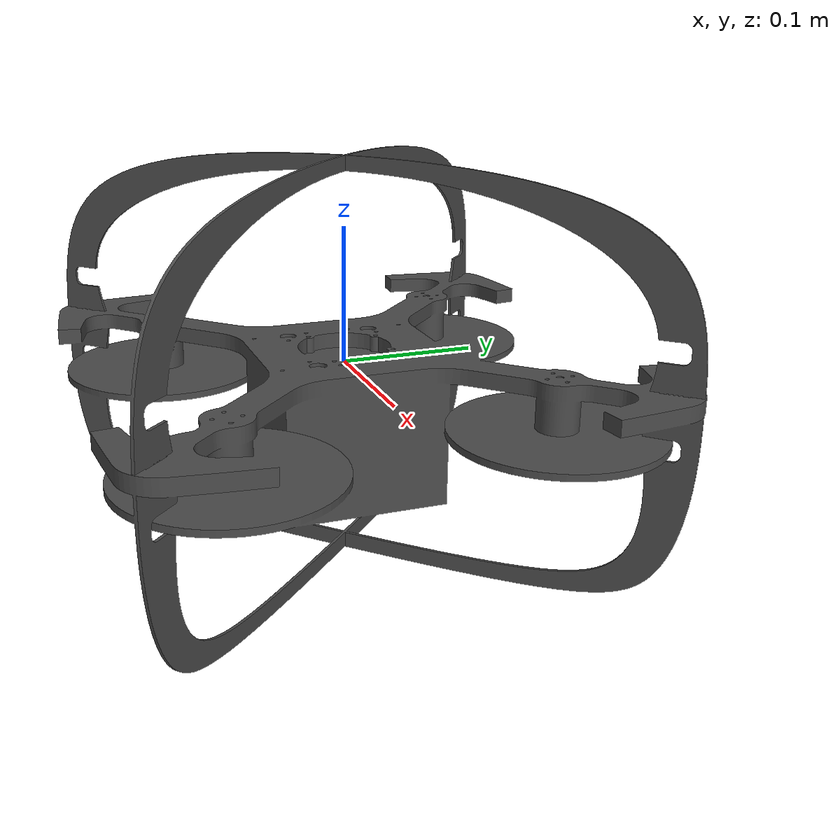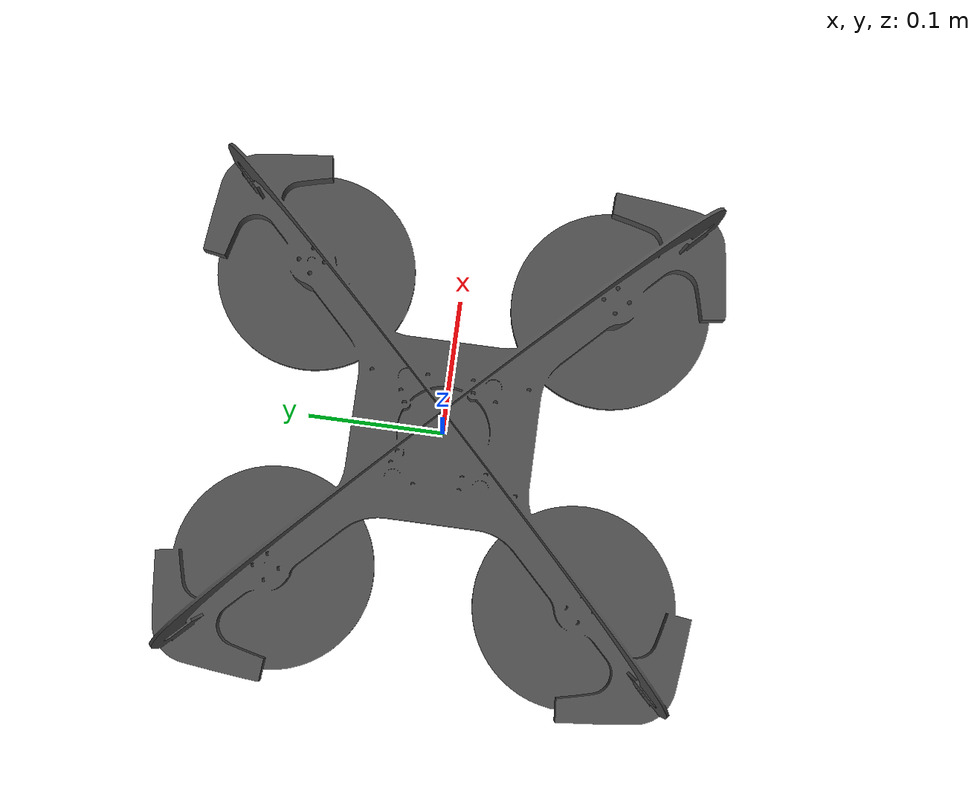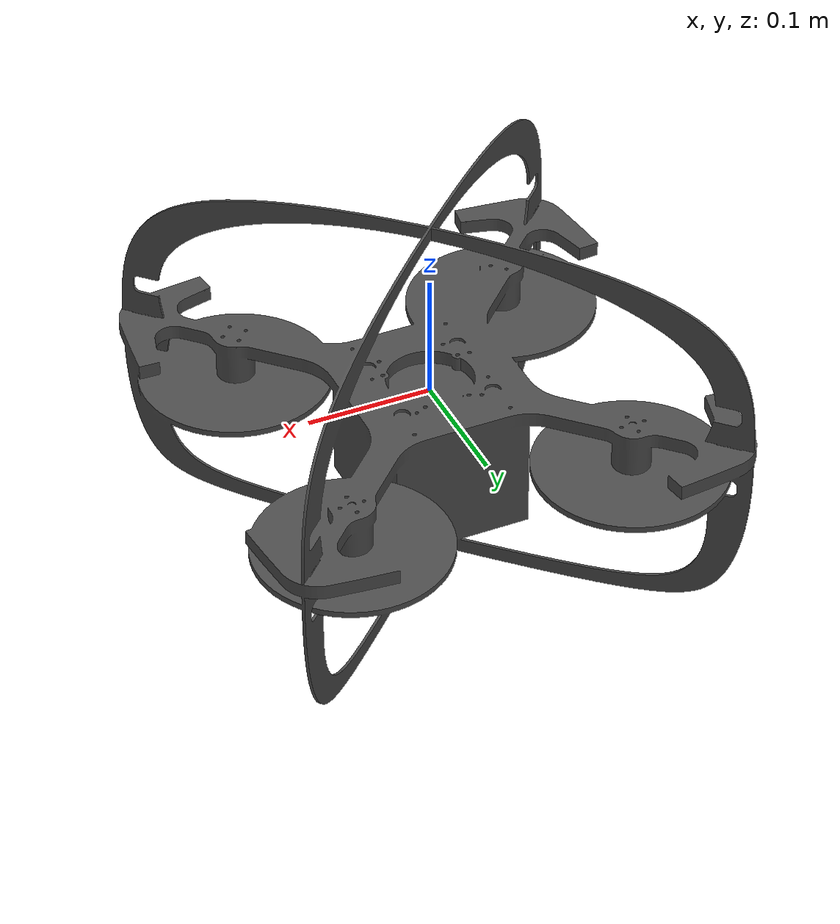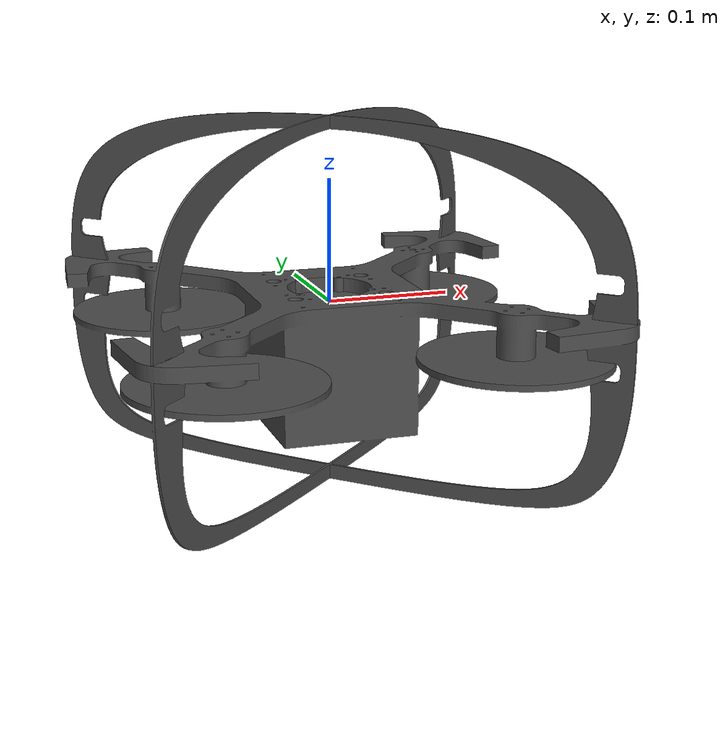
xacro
<?xml version="1.0"?>

<robot
  name="quadrotor"
  xmlns:xacro="http://www.ros.org/wiki/xacro"
>

    <!-- Included URDF Files -->
    <xacro:include filename="$(find m100_simulation)/simulation/urdf/explorer_quadrotor_base.urdf.xacro" />

    <!-- Instantiate quadrotor_base_macro once (has no parameters atm) -->
    <xacro:quadrotor_base_macro />

</robot>

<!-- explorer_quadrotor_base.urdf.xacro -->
<robot xmlns:xacro="http://www.ros.org/wiki/xacro">

  <xacro:property name="pi" value="3.1415926535897931" />

  <!-- Main quadrotor link -->
  <xacro:macro name="quadrotor_base_macro">
    <link name="base_link">
      <inertial>
        <mass value="1.477" />
        <origin xyz="0 0 0" />
        <inertia ixx="0.01152" ixy="0.0" ixz="0.0" iyy="0.01152" iyz="0.0" izz="0.0218" />
      </inertial>

      <visual>
        <origin xyz="0 0 0" rpy="0 0 0" />
        <geometry>
          <mesh filename="package://m100_simulation/simulation/meshes/mav_explorer.dae"/>
        </geometry>
      </visual>
      <!-- REDUCED -->
      <collision>
        <origin xyz="0 0 0" rpy="0 0 0" />
        <geometry>
          <box size="0.4 0.4 0.31"/>
        </geometry>
      </collision>
      <!-- REALISTIC -->

    </link>

    <gazebo reference="base_link">
      <mu1>0.6</mu1>
      <mu2>0.6</mu2>
      <self_collide>1</self_collide>
      <material>Gazebo/DarkGrey</material>
      <kp  value="1000000.0"/>
      <kd  value="1.0"/>
    </gazebo>

    <gazebo reference="base_link">
      <sensor type="ray" name="LidarLite">
          <pose>-0.03 0.15 -0.13 0 1.57 0</pose>
          <visualize>false</visualize>
          <update_rate>50</update_rate>
          <ray>
            <range>
                <min>0.05</min>
                <max>150</max>
                <resolution>0.02</resolution>
            </range>
          </ray>
          <plugin filename="libgazebo_ros_range.so" name="gazebo_ros_range">
            <gaussianNoise>0.0</gaussianNoise>
            <alwaysOn>true</alwaysOn>
            <updateRate>50</updateRate>
            <topicName>lidarlite3/range</topicName>
            <frameName>lidarlite3</frameName>
            <radiation>INFRARED</radiation>
            <fov>0</fov>
          </plugin>
      </sensor>
    </gazebo>

    <gazebo reference="base_link">
      <sensor type="ray" name="LidarLite">
          <pose>0.03 -0.15 0.13 0 -1.57 0</pose>
          <visualize>false</visualize>
          <update_rate>40</update_rate>
          <ray>
            <scan>
              <horizontal>
                <samples>3</samples>
                <resolution>3</resolution>
                <min_angle>-0.39</min_angle>
                <max_angle>0.39</max_angle>
              </horizontal>
              <vertical>
                <samples>3</samples>
                <resolution>3</resolution>
                <min_angle>-0.39</min_angle>
                <max_angle>0.39</max_angle>
              </vertical>
            </scan>
            <range>
              <min>0.05</min>
              <max>3</max>
              <resolution>0.01</resolution>
            </range>
          </ray>
          <plugin filename="libgazebo_ros_range.so" name="gazebo_ros_range">
            <gaussianNoise>0.005</gaussianNoise>
            <alwaysOn>true</alwaysOn>
            <updateRate>40</updateRate>
            <topicName>ceiling/lidarlite3/range</topicName>
            <frameName>ceiling/lidarlite3</frameName>
            <radiation>INFRARED</radiation>
          </plugin>
      </sensor>
    </gazebo>

    <!-- Sonar height sensor -->

  </xacro:macro>
</robot>
